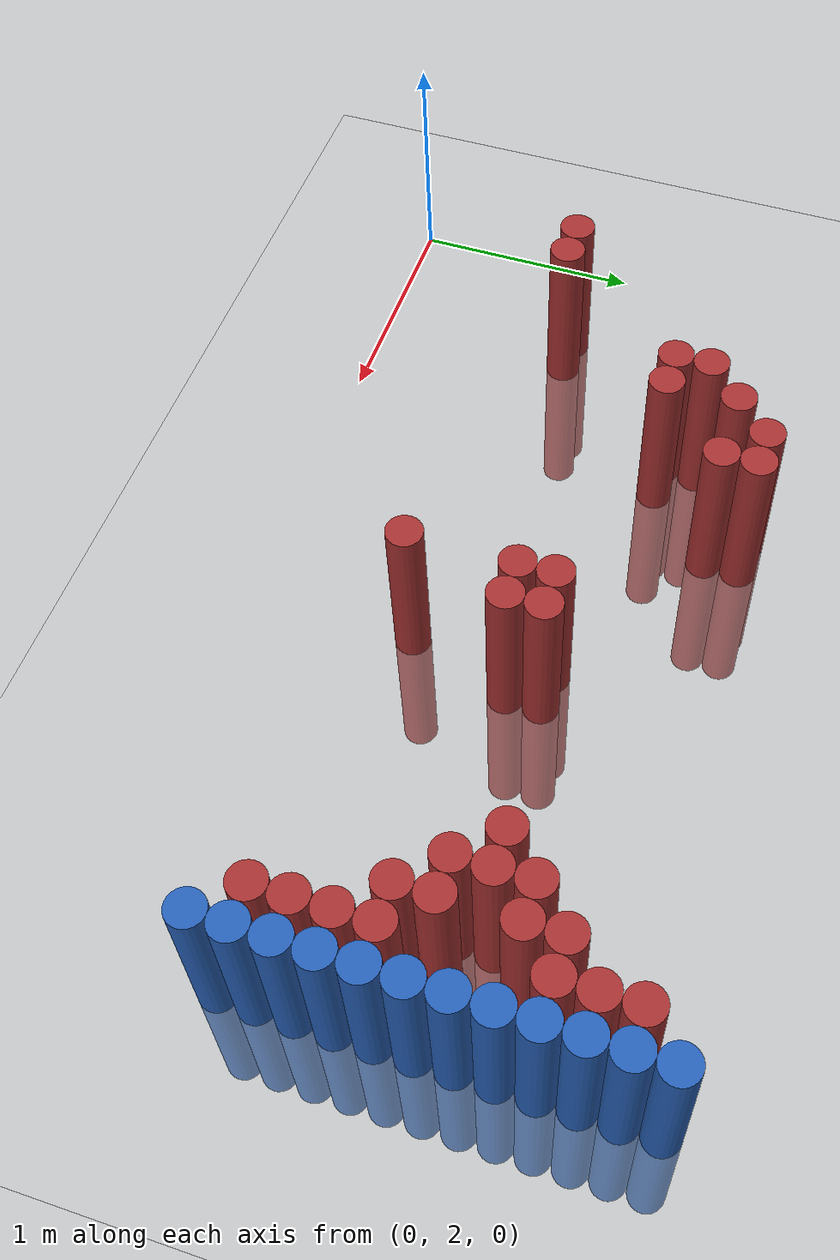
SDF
<sdf version="1.6">
 <world name="default">
  <model name="ground_plane">
   <static>1</static>
   <link name="link">
    <collision name="collision">
     <geometry><plane><normal>0 0 1</normal><size>100 100</size></plane></geometry>
     <surface><friction><ode><mu>100</mu><mu2>50</mu2></ode></friction></surface>
    </collision>
    <visual name="visual">
     <cast_shadows>0</cast_shadows>
     <geometry><plane><normal>0 0 1</normal><size>100 100</size></plane></geometry>
     <material>
      <script><uri>file://media/materials/scripts/gazebo.material</uri><name>Gazebo/Grey</name></script>
     </material>
    </visual>
   </link>
  </model>
  <model name="unit_cylinder_148">
   <static>1</static>
   <pose>3.925000 2.575000 0.000000 0.000000 0.000000 0.000000</pose>
   <link name="link">
    <inertial>
     <mass>1</mass>
     <inertia><ixx>0.145833</ixx><ixy>0</ixy><ixz>0</ixz><iyy>0.145833</iyy><iyz>0</iyz><izz>0.125</izz></inertia>
    </inertial>
    <collision name="collision">
     <geometry><cylinder><radius>0.075000</radius><length>1.5</length></cylinder></geometry>
    </collision>
    <visual name="visual">
     <geometry><cylinder><radius>0.075000</radius><length>1.5</length></cylinder></geometry>
     <material>
      <ambient>0.152000 0.379000 0.720000 1</ambient>
      <diffuse>0.152000 0.379000 0.720000 1</diffuse>
     </material>
     <material>
      <script><name>Gazebo/Grey</name><uri>file://media/materials/scripts/gazebo.material</uri></script>
     </material>
    </visual>
   </link>
  </model>
  <model name="unit_cylinder_150">
   <static>1</static>
   <pose>3.925000 2.725000 0.000000 0.000000 0.000000 0.000000</pose>
   <link name="link">
    <inertial>
     <mass>1</mass>
     <inertia><ixx>0.145833</ixx><ixy>0</ixy><ixz>0</ixz><iyy>0.145833</iyy><iyz>0</iyz><izz>0.125</izz></inertia>
    </inertial>
    <collision name="collision">
     <geometry><cylinder><radius>0.075000</radius><length>1.5</length></cylinder></geometry>
    </collision>
    <visual name="visual">
     <geometry><cylinder><radius>0.075000</radius><length>1.5</length></cylinder></geometry>
     <material>
      <ambient>0.152000 0.379000 0.720000 1</ambient>
      <diffuse>0.152000 0.379000 0.720000 1</diffuse>
     </material>
     <material>
      <script><name>Gazebo/Grey</name><uri>file://media/materials/scripts/gazebo.material</uri></script>
     </material>
    </visual>
   </link>
  </model>
  <model name="unit_cylinder_152">
   <static>1</static>
   <pose>3.925000 2.875000 0.000000 0.000000 0.000000 0.000000</pose>
   <link name="link">
    <inertial>
     <mass>1</mass>
     <inertia><ixx>0.145833</ixx><ixy>0</ixy><ixz>0</ixz><iyy>0.145833</iyy><iyz>0</iyz><izz>0.125</izz></inertia>
    </inertial>
    <collision name="collision">
     <geometry><cylinder><radius>0.075000</radius><length>1.5</length></cylinder></geometry>
    </collision>
    <visual name="visual">
     <geometry><cylinder><radius>0.075000</radius><length>1.5</length></cylinder></geometry>
     <material>
      <ambient>0.152000 0.379000 0.720000 1</ambient>
      <diffuse>0.152000 0.379000 0.720000 1</diffuse>
     </material>
     <material>
      <script><name>Gazebo/Grey</name><uri>file://media/materials/scripts/gazebo.material</uri></script>
     </material>
    </visual>
   </link>
  </model>
  <model name="unit_cylinder_154">
   <static>1</static>
   <pose>3.925000 3.025000 0.000000 0.000000 0.000000 0.000000</pose>
   <link name="link">
    <inertial>
     <mass>1</mass>
     <inertia><ixx>0.145833</ixx><ixy>0</ixy><ixz>0</ixz><iyy>0.145833</iyy><iyz>0</iyz><izz>0.125</izz></inertia>
    </inertial>
    <collision name="collision">
     <geometry><cylinder><radius>0.075000</radius><length>1.5</length></cylinder></geometry>
    </collision>
    <visual name="visual">
     <geometry><cylinder><radius>0.075000</radius><length>1.5</length></cylinder></geometry>
     <material>
      <ambient>0.152000 0.379000 0.720000 1</ambient>
      <diffuse>0.152000 0.379000 0.720000 1</diffuse>
     </material>
     <material>
      <script><name>Gazebo/Grey</name><uri>file://media/materials/scripts/gazebo.material</uri></script>
     </material>
    </visual>
   </link>
  </model>
  <model name="unit_cylinder_156">
   <static>1</static>
   <pose>3.925000 3.175000 0.000000 0.000000 0.000000 0.000000</pose>
   <link name="link">
    <inertial>
     <mass>1</mass>
     <inertia><ixx>0.145833</ixx><ixy>0</ixy><ixz>0</ixz><iyy>0.145833</iyy><iyz>0</iyz><izz>0.125</izz></inertia>
    </inertial>
    <collision name="collision">
     <geometry><cylinder><radius>0.075000</radius><length>1.5</length></cylinder></geometry>
    </collision>
    <visual name="visual">
     <geometry><cylinder><radius>0.075000</radius><length>1.5</length></cylinder></geometry>
     <material>
      <ambient>0.152000 0.379000 0.720000 1</ambient>
      <diffuse>0.152000 0.379000 0.720000 1</diffuse>
     </material>
     <material>
      <script><name>Gazebo/Grey</name><uri>file://media/materials/scripts/gazebo.material</uri></script>
     </material>
    </visual>
   </link>
  </model>
  <model name="unit_cylinder_158">
   <static>1</static>
   <pose>3.925000 3.325000 0.000000 0.000000 0.000000 0.000000</pose>
   <link name="link">
    <inertial>
     <mass>1</mass>
     <inertia><ixx>0.145833</ixx><ixy>0</ixy><ixz>0</ixz><iyy>0.145833</iyy><iyz>0</iyz><izz>0.125</izz></inertia>
    </inertial>
    <collision name="collision">
     <geometry><cylinder><radius>0.075000</radius><length>1.5</length></cylinder></geometry>
    </collision>
    <visual name="visual">
     <geometry><cylinder><radius>0.075000</radius><length>1.5</length></cylinder></geometry>
     <material>
      <ambient>0.152000 0.379000 0.720000 1</ambient>
      <diffuse>0.152000 0.379000 0.720000 1</diffuse>
     </material>
     <material>
      <script><name>Gazebo/Grey</name><uri>file://media/materials/scripts/gazebo.material</uri></script>
     </material>
    </visual>
   </link>
  </model>
  <model name="unit_cylinder_160">
   <static>1</static>
   <pose>3.925000 3.475000 0.000000 0.000000 0.000000 0.000000</pose>
   <link name="link">
    <inertial>
     <mass>1</mass>
     <inertia><ixx>0.145833</ixx><ixy>0</ixy><ixz>0</ixz><iyy>0.145833</iyy><iyz>0</iyz><izz>0.125</izz></inertia>
    </inertial>
    <collision name="collision">
     <geometry><cylinder><radius>0.075000</radius><length>1.5</length></cylinder></geometry>
    </collision>
    <visual name="visual">
     <geometry><cylinder><radius>0.075000</radius><length>1.5</length></cylinder></geometry>
     <material>
      <ambient>0.152000 0.379000 0.720000 1</ambient>
      <diffuse>0.152000 0.379000 0.720000 1</diffuse>
     </material>
     <material>
      <script><name>Gazebo/Grey</name><uri>file://media/materials/scripts/gazebo.material</uri></script>
     </material>
    </visual>
   </link>
  </model>
  <model name="unit_cylinder_162">
   <static>1</static>
   <pose>3.925000 3.625000 0.000000 0.000000 0.000000 0.000000</pose>
   <link name="link">
    <inertial>
     <mass>1</mass>
     <inertia><ixx>0.145833</ixx><ixy>0</ixy><ixz>0</ixz><iyy>0.145833</iyy><iyz>0</iyz><izz>0.125</izz></inertia>
    </inertial>
    <collision name="collision">
     <geometry><cylinder><radius>0.075000</radius><length>1.5</length></cylinder></geometry>
    </collision>
    <visual name="visual">
     <geometry><cylinder><radius>0.075000</radius><length>1.5</length></cylinder></geometry>
     <material>
      <ambient>0.152000 0.379000 0.720000 1</ambient>
      <diffuse>0.152000 0.379000 0.720000 1</diffuse>
     </material>
     <material>
      <script><name>Gazebo/Grey</name><uri>file://media/materials/scripts/gazebo.material</uri></script>
     </material>
    </visual>
   </link>
  </model>
  <model name="unit_cylinder_164">
   <static>1</static>
   <pose>3.925000 3.775000 0.000000 0.000000 0.000000 0.000000</pose>
   <link name="link">
    <inertial>
     <mass>1</mass>
     <inertia><ixx>0.145833</ixx><ixy>0</ixy><ixz>0</ixz><iyy>0.145833</iyy><iyz>0</iyz><izz>0.125</izz></inertia>
    </inertial>
    <collision name="collision">
     <geometry><cylinder><radius>0.075000</radius><length>1.5</length></cylinder></geometry>
    </collision>
    <visual name="visual">
     <geometry><cylinder><radius>0.075000</radius><length>1.5</length></cylinder></geometry>
     <material>
      <ambient>0.152000 0.379000 0.720000 1</ambient>
      <diffuse>0.152000 0.379000 0.720000 1</diffuse>
     </material>
     <material>
      <script><name>Gazebo/Grey</name><uri>file://media/materials/scripts/gazebo.material</uri></script>
     </material>
    </visual>
   </link>
  </model>
  <model name="unit_cylinder_166">
   <static>1</static>
   <pose>3.925000 3.925000 0.000000 0.000000 0.000000 0.000000</pose>
   <link name="link">
    <inertial>
     <mass>1</mass>
     <inertia><ixx>0.145833</ixx><ixy>0</ixy><ixz>0</ixz><iyy>0.145833</iyy><iyz>0</iyz><izz>0.125</izz></inertia>
    </inertial>
    <collision name="collision">
     <geometry><cylinder><radius>0.075000</radius><length>1.5</length></cylinder></geometry>
    </collision>
    <visual name="visual">
     <geometry><cylinder><radius>0.075000</radius><length>1.5</length></cylinder></geometry>
     <material>
      <ambient>0.152000 0.379000 0.720000 1</ambient>
      <diffuse>0.152000 0.379000 0.720000 1</diffuse>
     </material>
     <material>
      <script><name>Gazebo/Grey</name><uri>file://media/materials/scripts/gazebo.material</uri></script>
     </material>
    </visual>
   </link>
  </model>
  <model name="unit_cylinder_168">
   <static>1</static>
   <pose>3.925000 4.075000 0.000000 0.000000 0.000000 0.000000</pose>
   <link name="link">
    <inertial>
     <mass>1</mass>
     <inertia><ixx>0.145833</ixx><ixy>0</ixy><ixz>0</ixz><iyy>0.145833</iyy><iyz>0</iyz><izz>0.125</izz></inertia>
    </inertial>
    <collision name="collision">
     <geometry><cylinder><radius>0.075000</radius><length>1.5</length></cylinder></geometry>
    </collision>
    <visual name="visual">
     <geometry><cylinder><radius>0.075000</radius><length>1.5</length></cylinder></geometry>
     <material>
      <ambient>0.152000 0.379000 0.720000 1</ambient>
      <diffuse>0.152000 0.379000 0.720000 1</diffuse>
     </material>
     <material>
      <script><name>Gazebo/Grey</name><uri>file://media/materials/scripts/gazebo.material</uri></script>
     </material>
    </visual>
   </link>
  </model>
  <model name="unit_cylinder_170">
   <static>1</static>
   <pose>3.925000 4.225000 0.000000 0.000000 0.000000 0.000000</pose>
   <link name="link">
    <inertial>
     <mass>1</mass>
     <inertia><ixx>0.145833</ixx><ixy>0</ixy><ixz>0</ixz><iyy>0.145833</iyy><iyz>0</iyz><izz>0.125</izz></inertia>
    </inertial>
    <collision name="collision">
     <geometry><cylinder><radius>0.075000</radius><length>1.5</length></cylinder></geometry>
    </collision>
    <visual name="visual">
     <geometry><cylinder><radius>0.075000</radius><length>1.5</length></cylinder></geometry>
     <material>
      <ambient>0.152000 0.379000 0.720000 1</ambient>
      <diffuse>0.152000 0.379000 0.720000 1</diffuse>
     </material>
     <material>
      <script><name>Gazebo/Grey</name><uri>file://media/materials/scripts/gazebo.material</uri></script>
     </material>
    </visual>
   </link>
  </model>
  <model name="unit_cylinder_394">
   <static>1</static>
   <pose>0.475000 2.875000 0.000000 0.000000 0.000000 0.000000</pose>
   <link name="link">
    <inertial>
     <mass>1</mass>
     <inertia><ixx>0.145833</ixx><ixy>0</ixy><ixz>0</ixz><iyy>0.145833</iyy><iyz>0</iyz><izz>0.125</izz></inertia>
    </inertial>
    <collision name="collision">
     <geometry><cylinder><radius>0.075000</radius><length>1.5</length></cylinder></geometry>
    </collision>
    <visual name="visual">
     <geometry><cylinder><radius>0.075000</radius><length>1.5</length></cylinder></geometry>
     <material>
      <ambient>0.648000 0.192000 0.192000 1</ambient>
      <diffuse>0.648000 0.192000 0.192000 1</diffuse>
     </material>
     <material>
      <script><name>Gazebo/Grey</name><uri>file://media/materials/scripts/gazebo.material</uri></script>
     </material>
    </visual>
   </link>
  </model>
  <model name="unit_cylinder_402">
   <static>1</static>
   <pose>0.625000 2.875000 0.000000 0.000000 0.000000 0.000000</pose>
   <link name="link">
    <inertial>
     <mass>1</mass>
     <inertia><ixx>0.145833</ixx><ixy>0</ixy><ixz>0</ixz><iyy>0.145833</iyy><iyz>0</iyz><izz>0.125</izz></inertia>
    </inertial>
    <collision name="collision">
     <geometry><cylinder><radius>0.075000</radius><length>1.5</length></cylinder></geometry>
    </collision>
    <visual name="visual">
     <geometry><cylinder><radius>0.075000</radius><length>1.5</length></cylinder></geometry>
     <material>
      <ambient>0.648000 0.192000 0.192000 1</ambient>
      <diffuse>0.648000 0.192000 0.192000 1</diffuse>
     </material>
     <material>
      <script><name>Gazebo/Grey</name><uri>file://media/materials/scripts/gazebo.material</uri></script>
     </material>
    </visual>
   </link>
  </model>
  <model name="unit_cylinder_412">
   <static>1</static>
   <pose>1.075000 3.475000 0.000000 0.000000 0.000000 0.000000</pose>
   <link name="link">
    <inertial>
     <mass>1</mass>
     <inertia><ixx>0.145833</ixx><ixy>0</ixy><ixz>0</ixz><iyy>0.145833</iyy><iyz>0</iyz><izz>0.125</izz></inertia>
    </inertial>
    <collision name="collision">
     <geometry><cylinder><radius>0.075000</radius><length>1.5</length></cylinder></geometry>
    </collision>
    <visual name="visual">
     <geometry><cylinder><radius>0.075000</radius><length>1.5</length></cylinder></geometry>
     <material>
      <ambient>0.648000 0.192000 0.192000 1</ambient>
      <diffuse>0.648000 0.192000 0.192000 1</diffuse>
     </material>
     <material>
      <script><name>Gazebo/Grey</name><uri>file://media/materials/scripts/gazebo.material</uri></script>
     </material>
    </visual>
   </link>
  </model>
  <model name="unit_cylinder_413">
   <static>1</static>
   <pose>1.075000 3.625000 0.000000 0.000000 0.000000 0.000000</pose>
   <link name="link">
    <inertial>
     <mass>1</mass>
     <inertia><ixx>0.145833</ixx><ixy>0</ixy><ixz>0</ixz><iyy>0.145833</iyy><iyz>0</iyz><izz>0.125</izz></inertia>
    </inertial>
    <collision name="collision">
     <geometry><cylinder><radius>0.075000</radius><length>1.5</length></cylinder></geometry>
    </collision>
    <visual name="visual">
     <geometry><cylinder><radius>0.075000</radius><length>1.5</length></cylinder></geometry>
     <material>
      <ambient>0.648000 0.192000 0.192000 1</ambient>
      <diffuse>0.648000 0.192000 0.192000 1</diffuse>
     </material>
     <material>
      <script><name>Gazebo/Grey</name><uri>file://media/materials/scripts/gazebo.material</uri></script>
     </material>
    </visual>
   </link>
  </model>
  <model name="unit_cylinder_417">
   <static>1</static>
   <pose>1.225000 3.475000 0.000000 0.000000 0.000000 0.000000</pose>
   <link name="link">
    <inertial>
     <mass>1</mass>
     <inertia><ixx>0.145833</ixx><ixy>0</ixy><ixz>0</ixz><iyy>0.145833</iyy><iyz>0</iyz><izz>0.125</izz></inertia>
    </inertial>
    <collision name="collision">
     <geometry><cylinder><radius>0.075000</radius><length>1.5</length></cylinder></geometry>
    </collision>
    <visual name="visual">
     <geometry><cylinder><radius>0.075000</radius><length>1.5</length></cylinder></geometry>
     <material>
      <ambient>0.648000 0.192000 0.192000 1</ambient>
      <diffuse>0.648000 0.192000 0.192000 1</diffuse>
     </material>
     <material>
      <script><name>Gazebo/Grey</name><uri>file://media/materials/scripts/gazebo.material</uri></script>
     </material>
    </visual>
   </link>
  </model>
  <model name="unit_cylinder_418">
   <static>1</static>
   <pose>1.225000 3.775000 0.000000 0.000000 0.000000 0.000000</pose>
   <link name="link">
    <inertial>
     <mass>1</mass>
     <inertia><ixx>0.145833</ixx><ixy>0</ixy><ixz>0</ixz><iyy>0.145833</iyy><iyz>0</iyz><izz>0.125</izz></inertia>
    </inertial>
    <collision name="collision">
     <geometry><cylinder><radius>0.075000</radius><length>1.5</length></cylinder></geometry>
    </collision>
    <visual name="visual">
     <geometry><cylinder><radius>0.075000</radius><length>1.5</length></cylinder></geometry>
     <material>
      <ambient>0.648000 0.192000 0.192000 1</ambient>
      <diffuse>0.648000 0.192000 0.192000 1</diffuse>
     </material>
     <material>
      <script><name>Gazebo/Grey</name><uri>file://media/materials/scripts/gazebo.material</uri></script>
     </material>
    </visual>
   </link>
  </model>
  <model name="unit_cylinder_423">
   <static>1</static>
   <pose>1.375000 3.925000 0.000000 0.000000 0.000000 0.000000</pose>
   <link name="link">
    <inertial>
     <mass>1</mass>
     <inertia><ixx>0.145833</ixx><ixy>0</ixy><ixz>0</ixz><iyy>0.145833</iyy><iyz>0</iyz><izz>0.125</izz></inertia>
    </inertial>
    <collision name="collision">
     <geometry><cylinder><radius>0.075000</radius><length>1.5</length></cylinder></geometry>
    </collision>
    <visual name="visual">
     <geometry><cylinder><radius>0.075000</radius><length>1.5</length></cylinder></geometry>
     <material>
      <ambient>0.648000 0.192000 0.192000 1</ambient>
      <diffuse>0.648000 0.192000 0.192000 1</diffuse>
     </material>
     <material>
      <script><name>Gazebo/Grey</name><uri>file://media/materials/scripts/gazebo.material</uri></script>
     </material>
    </visual>
   </link>
  </model>
  <model name="unit_cylinder_425">
   <static>1</static>
   <pose>1.525000 3.775000 0.000000 0.000000 0.000000 0.000000</pose>
   <link name="link">
    <inertial>
     <mass>1</mass>
     <inertia><ixx>0.145833</ixx><ixy>0</ixy><ixz>0</ixz><iyy>0.145833</iyy><iyz>0</iyz><izz>0.125</izz></inertia>
    </inertial>
    <collision name="collision">
     <geometry><cylinder><radius>0.075000</radius><length>1.5</length></cylinder></geometry>
    </collision>
    <visual name="visual">
     <geometry><cylinder><radius>0.075000</radius><length>1.5</length></cylinder></geometry>
     <material>
      <ambient>0.648000 0.192000 0.192000 1</ambient>
      <diffuse>0.648000 0.192000 0.192000 1</diffuse>
     </material>
     <material>
      <script><name>Gazebo/Grey</name><uri>file://media/materials/scripts/gazebo.material</uri></script>
     </material>
    </visual>
   </link>
  </model>
  <model name="unit_cylinder_426">
   <static>1</static>
   <pose>1.525000 3.925000 0.000000 0.000000 0.000000 0.000000</pose>
   <link name="link">
    <inertial>
     <mass>1</mass>
     <inertia><ixx>0.145833</ixx><ixy>0</ixy><ixz>0</ixz><iyy>0.145833</iyy><iyz>0</iyz><izz>0.125</izz></inertia>
    </inertial>
    <collision name="collision">
     <geometry><cylinder><radius>0.075000</radius><length>1.5</length></cylinder></geometry>
    </collision>
    <visual name="visual">
     <geometry><cylinder><radius>0.075000</radius><length>1.5</length></cylinder></geometry>
     <material>
      <ambient>0.648000 0.192000 0.192000 1</ambient>
      <diffuse>0.648000 0.192000 0.192000 1</diffuse>
     </material>
     <material>
      <script><name>Gazebo/Grey</name><uri>file://media/materials/scripts/gazebo.material</uri></script>
     </material>
    </visual>
   </link>
  </model>
  <model name="unit_cylinder_446">
   <static>1</static>
   <pose>2.275000 2.725000 0.000000 0.000000 0.000000 0.000000</pose>
   <link name="link">
    <inertial>
     <mass>1</mass>
     <inertia><ixx>0.145833</ixx><ixy>0</ixy><ixz>0</ixz><iyy>0.145833</iyy><iyz>0</iyz><izz>0.125</izz></inertia>
    </inertial>
    <collision name="collision">
     <geometry><cylinder><radius>0.075000</radius><length>1.5</length></cylinder></geometry>
    </collision>
    <visual name="visual">
     <geometry><cylinder><radius>0.075000</radius><length>1.5</length></cylinder></geometry>
     <material>
      <ambient>0.648000 0.192000 0.192000 1</ambient>
      <diffuse>0.648000 0.192000 0.192000 1</diffuse>
     </material>
     <material>
      <script><name>Gazebo/Grey</name><uri>file://media/materials/scripts/gazebo.material</uri></script>
     </material>
    </visual>
   </link>
  </model>
  <model name="unit_cylinder_447">
   <static>1</static>
   <pose>2.275000 3.175000 0.000000 0.000000 0.000000 0.000000</pose>
   <link name="link">
    <inertial>
     <mass>1</mass>
     <inertia><ixx>0.145833</ixx><ixy>0</ixy><ixz>0</ixz><iyy>0.145833</iyy><iyz>0</iyz><izz>0.125</izz></inertia>
    </inertial>
    <collision name="collision">
     <geometry><cylinder><radius>0.075000</radius><length>1.5</length></cylinder></geometry>
    </collision>
    <visual name="visual">
     <geometry><cylinder><radius>0.075000</radius><length>1.5</length></cylinder></geometry>
     <material>
      <ambient>0.648000 0.192000 0.192000 1</ambient>
      <diffuse>0.648000 0.192000 0.192000 1</diffuse>
     </material>
     <material>
      <script><name>Gazebo/Grey</name><uri>file://media/materials/scripts/gazebo.material</uri></script>
     </material>
    </visual>
   </link>
  </model>
  <model name="unit_cylinder_448">
   <static>1</static>
   <pose>2.275000 3.325000 0.000000 0.000000 0.000000 0.000000</pose>
   <link name="link">
    <inertial>
     <mass>1</mass>
     <inertia><ixx>0.145833</ixx><ixy>0</ixy><ixz>0</ixz><iyy>0.145833</iyy><iyz>0</iyz><izz>0.125</izz></inertia>
    </inertial>
    <collision name="collision">
     <geometry><cylinder><radius>0.075000</radius><length>1.5</length></cylinder></geometry>
    </collision>
    <visual name="visual">
     <geometry><cylinder><radius>0.075000</radius><length>1.5</length></cylinder></geometry>
     <material>
      <ambient>0.648000 0.192000 0.192000 1</ambient>
      <diffuse>0.648000 0.192000 0.192000 1</diffuse>
     </material>
     <material>
      <script><name>Gazebo/Grey</name><uri>file://media/materials/scripts/gazebo.material</uri></script>
     </material>
    </visual>
   </link>
  </model>
  <model name="unit_cylinder_455">
   <static>1</static>
   <pose>2.425000 3.175000 0.000000 0.000000 0.000000 0.000000</pose>
   <link name="link">
    <inertial>
     <mass>1</mass>
     <inertia><ixx>0.145833</ixx><ixy>0</ixy><ixz>0</ixz><iyy>0.145833</iyy><iyz>0</iyz><izz>0.125</izz></inertia>
    </inertial>
    <collision name="collision">
     <geometry><cylinder><radius>0.075000</radius><length>1.5</length></cylinder></geometry>
    </collision>
    <visual name="visual">
     <geometry><cylinder><radius>0.075000</radius><length>1.5</length></cylinder></geometry>
     <material>
      <ambient>0.648000 0.192000 0.192000 1</ambient>
      <diffuse>0.648000 0.192000 0.192000 1</diffuse>
     </material>
     <material>
      <script><name>Gazebo/Grey</name><uri>file://media/materials/scripts/gazebo.material</uri></script>
     </material>
    </visual>
   </link>
  </model>
  <model name="unit_cylinder_456">
   <static>1</static>
   <pose>2.425000 3.325000 0.000000 0.000000 0.000000 0.000000</pose>
   <link name="link">
    <inertial>
     <mass>1</mass>
     <inertia><ixx>0.145833</ixx><ixy>0</ixy><ixz>0</ixz><iyy>0.145833</iyy><iyz>0</iyz><izz>0.125</izz></inertia>
    </inertial>
    <collision name="collision">
     <geometry><cylinder><radius>0.075000</radius><length>1.5</length></cylinder></geometry>
    </collision>
    <visual name="visual">
     <geometry><cylinder><radius>0.075000</radius><length>1.5</length></cylinder></geometry>
     <material>
      <ambient>0.648000 0.192000 0.192000 1</ambient>
      <diffuse>0.648000 0.192000 0.192000 1</diffuse>
     </material>
     <material>
      <script><name>Gazebo/Grey</name><uri>file://media/materials/scripts/gazebo.material</uri></script>
     </material>
    </visual>
   </link>
  </model>
  <model name="unit_cylinder_497">
   <static>1</static>
   <pose>3.325000 3.475000 0.000000 0.000000 0.000000 0.000000</pose>
   <link name="link">
    <inertial>
     <mass>1</mass>
     <inertia><ixx>0.145833</ixx><ixy>0</ixy><ixz>0</ixz><iyy>0.145833</iyy><iyz>0</iyz><izz>0.125</izz></inertia>
    </inertial>
    <collision name="collision">
     <geometry><cylinder><radius>0.075000</radius><length>1.5</length></cylinder></geometry>
    </collision>
    <visual name="visual">
     <geometry><cylinder><radius>0.075000</radius><length>1.5</length></cylinder></geometry>
     <material>
      <ambient>0.648000 0.192000 0.192000 1</ambient>
      <diffuse>0.648000 0.192000 0.192000 1</diffuse>
     </material>
     <material>
      <script><name>Gazebo/Grey</name><uri>file://media/materials/scripts/gazebo.material</uri></script>
     </material>
    </visual>
   </link>
  </model>
  <model name="unit_cylinder_503">
   <static>1</static>
   <pose>3.475000 3.325000 0.000000 0.000000 0.000000 0.000000</pose>
   <link name="link">
    <inertial>
     <mass>1</mass>
     <inertia><ixx>0.145833</ixx><ixy>0</ixy><ixz>0</ixz><iyy>0.145833</iyy><iyz>0</iyz><izz>0.125</izz></inertia>
    </inertial>
    <collision name="collision">
     <geometry><cylinder><radius>0.075000</radius><length>1.5</length></cylinder></geometry>
    </collision>
    <visual name="visual">
     <geometry><cylinder><radius>0.075000</radius><length>1.5</length></cylinder></geometry>
     <material>
      <ambient>0.648000 0.192000 0.192000 1</ambient>
      <diffuse>0.648000 0.192000 0.192000 1</diffuse>
     </material>
     <material>
      <script><name>Gazebo/Grey</name><uri>file://media/materials/scripts/gazebo.material</uri></script>
     </material>
    </visual>
   </link>
  </model>
  <model name="unit_cylinder_504">
   <static>1</static>
   <pose>3.475000 3.475000 0.000000 0.000000 0.000000 0.000000</pose>
   <link name="link">
    <inertial>
     <mass>1</mass>
     <inertia><ixx>0.145833</ixx><ixy>0</ixy><ixz>0</ixz><iyy>0.145833</iyy><iyz>0</iyz><izz>0.125</izz></inertia>
    </inertial>
    <collision name="collision">
     <geometry><cylinder><radius>0.075000</radius><length>1.5</length></cylinder></geometry>
    </collision>
    <visual name="visual">
     <geometry><cylinder><radius>0.075000</radius><length>1.5</length></cylinder></geometry>
     <material>
      <ambient>0.648000 0.192000 0.192000 1</ambient>
      <diffuse>0.648000 0.192000 0.192000 1</diffuse>
     </material>
     <material>
      <script><name>Gazebo/Grey</name><uri>file://media/materials/scripts/gazebo.material</uri></script>
     </material>
    </visual>
   </link>
  </model>
  <model name="unit_cylinder_505">
   <static>1</static>
   <pose>3.475000 3.625000 0.000000 0.000000 0.000000 0.000000</pose>
   <link name="link">
    <inertial>
     <mass>1</mass>
     <inertia><ixx>0.145833</ixx><ixy>0</ixy><ixz>0</ixz><iyy>0.145833</iyy><iyz>0</iyz><izz>0.125</izz></inertia>
    </inertial>
    <collision name="collision">
     <geometry><cylinder><radius>0.075000</radius><length>1.5</length></cylinder></geometry>
    </collision>
    <visual name="visual">
     <geometry><cylinder><radius>0.075000</radius><length>1.5</length></cylinder></geometry>
     <material>
      <ambient>0.648000 0.192000 0.192000 1</ambient>
      <diffuse>0.648000 0.192000 0.192000 1</diffuse>
     </material>
     <material>
      <script><name>Gazebo/Grey</name><uri>file://media/materials/scripts/gazebo.material</uri></script>
     </material>
    </visual>
   </link>
  </model>
  <model name="unit_cylinder_510">
   <static>1</static>
   <pose>3.625000 3.175000 0.000000 0.000000 0.000000 0.000000</pose>
   <link name="link">
    <inertial>
     <mass>1</mass>
     <inertia><ixx>0.145833</ixx><ixy>0</ixy><ixz>0</ixz><iyy>0.145833</iyy><iyz>0</iyz><izz>0.125</izz></inertia>
    </inertial>
    <collision name="collision">
     <geometry><cylinder><radius>0.075000</radius><length>1.5</length></cylinder></geometry>
    </collision>
    <visual name="visual">
     <geometry><cylinder><radius>0.075000</radius><length>1.5</length></cylinder></geometry>
     <material>
      <ambient>0.648000 0.192000 0.192000 1</ambient>
      <diffuse>0.648000 0.192000 0.192000 1</diffuse>
     </material>
     <material>
      <script><name>Gazebo/Grey</name><uri>file://media/materials/scripts/gazebo.material</uri></script>
     </material>
    </visual>
   </link>
  </model>
  <model name="unit_cylinder_511">
   <static>1</static>
   <pose>3.625000 3.325000 0.000000 0.000000 0.000000 0.000000</pose>
   <link name="link">
    <inertial>
     <mass>1</mass>
     <inertia><ixx>0.145833</ixx><ixy>0</ixy><ixz>0</ixz><iyy>0.145833</iyy><iyz>0</iyz><izz>0.125</izz></inertia>
    </inertial>
    <collision name="collision">
     <geometry><cylinder><radius>0.075000</radius><length>1.5</length></cylinder></geometry>
    </collision>
    <visual name="visual">
     <geometry><cylinder><radius>0.075000</radius><length>1.5</length></cylinder></geometry>
     <material>
      <ambient>0.648000 0.192000 0.192000 1</ambient>
      <diffuse>0.648000 0.192000 0.192000 1</diffuse>
     </material>
     <material>
      <script><name>Gazebo/Grey</name><uri>file://media/materials/scripts/gazebo.material</uri></script>
     </material>
    </visual>
   </link>
  </model>
  <model name="unit_cylinder_512">
   <static>1</static>
   <pose>3.625000 3.625000 0.000000 0.000000 0.000000 0.000000</pose>
   <link name="link">
    <inertial>
     <mass>1</mass>
     <inertia><ixx>0.145833</ixx><ixy>0</ixy><ixz>0</ixz><iyy>0.145833</iyy><iyz>0</iyz><izz>0.125</izz></inertia>
    </inertial>
    <collision name="collision">
     <geometry><cylinder><radius>0.075000</radius><length>1.5</length></cylinder></geometry>
    </collision>
    <visual name="visual">
     <geometry><cylinder><radius>0.075000</radius><length>1.5</length></cylinder></geometry>
     <material>
      <ambient>0.648000 0.192000 0.192000 1</ambient>
      <diffuse>0.648000 0.192000 0.192000 1</diffuse>
     </material>
     <material>
      <script><name>Gazebo/Grey</name><uri>file://media/materials/scripts/gazebo.material</uri></script>
     </material>
    </visual>
   </link>
  </model>
  <model name="unit_cylinder_513">
   <static>1</static>
   <pose>3.625000 3.775000 0.000000 0.000000 0.000000 0.000000</pose>
   <link name="link">
    <inertial>
     <mass>1</mass>
     <inertia><ixx>0.145833</ixx><ixy>0</ixy><ixz>0</ixz><iyy>0.145833</iyy><iyz>0</iyz><izz>0.125</izz></inertia>
    </inertial>
    <collision name="collision">
     <geometry><cylinder><radius>0.075000</radius><length>1.5</length></cylinder></geometry>
    </collision>
    <visual name="visual">
     <geometry><cylinder><radius>0.075000</radius><length>1.5</length></cylinder></geometry>
     <material>
      <ambient>0.648000 0.192000 0.192000 1</ambient>
      <diffuse>0.648000 0.192000 0.192000 1</diffuse>
     </material>
     <material>
      <script><name>Gazebo/Grey</name><uri>file://media/materials/scripts/gazebo.material</uri></script>
     </material>
    </visual>
   </link>
  </model>
  <model name="unit_cylinder_528">
   <static>1</static>
   <pose>3.775000 2.725000 0.000000 0.000000 0.000000 0.000000</pose>
   <link name="link">
    <inertial>
     <mass>1</mass>
     <inertia><ixx>0.145833</ixx><ixy>0</ixy><ixz>0</ixz><iyy>0.145833</iyy><iyz>0</iyz><izz>0.125</izz></inertia>
    </inertial>
    <collision name="collision">
     <geometry><cylinder><radius>0.075000</radius><length>1.5</length></cylinder></geometry>
    </collision>
    <visual name="visual">
     <geometry><cylinder><radius>0.075000</radius><length>1.5</length></cylinder></geometry>
     <material>
      <ambient>0.648000 0.192000 0.192000 1</ambient>
      <diffuse>0.648000 0.192000 0.192000 1</diffuse>
     </material>
     <material>
      <script><name>Gazebo/Grey</name><uri>file://media/materials/scripts/gazebo.material</uri></script>
     </material>
    </visual>
   </link>
  </model>
  <model name="unit_cylinder_529">
   <static>1</static>
   <pose>3.775000 2.875000 0.000000 0.000000 0.000000 0.000000</pose>
   <link name="link">
    <inertial>
     <mass>1</mass>
     <inertia><ixx>0.145833</ixx><ixy>0</ixy><ixz>0</ixz><iyy>0.145833</iyy><iyz>0</iyz><izz>0.125</izz></inertia>
    </inertial>
    <collision name="collision">
     <geometry><cylinder><radius>0.075000</radius><length>1.5</length></cylinder></geometry>
    </collision>
    <visual name="visual">
     <geometry><cylinder><radius>0.075000</radius><length>1.5</length></cylinder></geometry>
     <material>
      <ambient>0.648000 0.192000 0.192000 1</ambient>
      <diffuse>0.648000 0.192000 0.192000 1</diffuse>
     </material>
     <material>
      <script><name>Gazebo/Grey</name><uri>file://media/materials/scripts/gazebo.material</uri></script>
     </material>
    </visual>
   </link>
  </model>
  <model name="unit_cylinder_530">
   <static>1</static>
   <pose>3.775000 3.025000 0.000000 0.000000 0.000000 0.000000</pose>
   <link name="link">
    <inertial>
     <mass>1</mass>
     <inertia><ixx>0.145833</ixx><ixy>0</ixy><ixz>0</ixz><iyy>0.145833</iyy><iyz>0</iyz><izz>0.125</izz></inertia>
    </inertial>
    <collision name="collision">
     <geometry><cylinder><radius>0.075000</radius><length>1.5</length></cylinder></geometry>
    </collision>
    <visual name="visual">
     <geometry><cylinder><radius>0.075000</radius><length>1.5</length></cylinder></geometry>
     <material>
      <ambient>0.648000 0.192000 0.192000 1</ambient>
      <diffuse>0.648000 0.192000 0.192000 1</diffuse>
     </material>
     <material>
      <script><name>Gazebo/Grey</name><uri>file://media/materials/scripts/gazebo.material</uri></script>
     </material>
    </visual>
   </link>
  </model>
  <model name="unit_cylinder_531">
   <static>1</static>
   <pose>3.775000 3.175000 0.000000 0.000000 0.000000 0.000000</pose>
   <link name="link">
    <inertial>
     <mass>1</mass>
     <inertia><ixx>0.145833</ixx><ixy>0</ixy><ixz>0</ixz><iyy>0.145833</iyy><iyz>0</iyz><izz>0.125</izz></inertia>
    </inertial>
    <collision name="collision">
     <geometry><cylinder><radius>0.075000</radius><length>1.5</length></cylinder></geometry>
    </collision>
    <visual name="visual">
     <geometry><cylinder><radius>0.075000</radius><length>1.5</length></cylinder></geometry>
     <material>
      <ambient>0.648000 0.192000 0.192000 1</ambient>
      <diffuse>0.648000 0.192000 0.192000 1</diffuse>
     </material>
     <material>
      <script><name>Gazebo/Grey</name><uri>file://media/materials/scripts/gazebo.material</uri></script>
     </material>
    </visual>
   </link>
  </model>
  <model name="unit_cylinder_532">
   <static>1</static>
   <pose>3.775000 3.775000 0.000000 0.000000 0.000000 0.000000</pose>
   <link name="link">
    <inertial>
     <mass>1</mass>
     <inertia><ixx>0.145833</ixx><ixy>0</ixy><ixz>0</ixz><iyy>0.145833</iyy><iyz>0</iyz><izz>0.125</izz></inertia>
    </inertial>
    <collision name="collision">
     <geometry><cylinder><radius>0.075000</radius><length>1.5</length></cylinder></geometry>
    </collision>
    <visual name="visual">
     <geometry><cylinder><radius>0.075000</radius><length>1.5</length></cylinder></geometry>
     <material>
      <ambient>0.648000 0.192000 0.192000 1</ambient>
      <diffuse>0.648000 0.192000 0.192000 1</diffuse>
     </material>
     <material>
      <script><name>Gazebo/Grey</name><uri>file://media/materials/scripts/gazebo.material</uri></script>
     </material>
    </visual>
   </link>
  </model>
  <model name="unit_cylinder_533">
   <static>1</static>
   <pose>3.775000 3.925000 0.000000 0.000000 0.000000 0.000000</pose>
   <link name="link">
    <inertial>
     <mass>1</mass>
     <inertia><ixx>0.145833</ixx><ixy>0</ixy><ixz>0</ixz><iyy>0.145833</iyy><iyz>0</iyz><izz>0.125</izz></inertia>
    </inertial>
    <collision name="collision">
     <geometry><cylinder><radius>0.075000</radius><length>1.5</length></cylinder></geometry>
    </collision>
    <visual name="visual">
     <geometry><cylinder><radius>0.075000</radius><length>1.5</length></cylinder></geometry>
     <material>
      <ambient>0.648000 0.192000 0.192000 1</ambient>
      <diffuse>0.648000 0.192000 0.192000 1</diffuse>
     </material>
     <material>
      <script><name>Gazebo/Grey</name><uri>file://media/materials/scripts/gazebo.material</uri></script>
     </material>
    </visual>
   </link>
  </model>
  <model name="unit_cylinder_534">
   <static>1</static>
   <pose>3.775000 4.075000 0.000000 0.000000 0.000000 0.000000</pose>
   <link name="link">
    <inertial>
     <mass>1</mass>
     <inertia><ixx>0.145833</ixx><ixy>0</ixy><ixz>0</ixz><iyy>0.145833</iyy><iyz>0</iyz><izz>0.125</izz></inertia>
    </inertial>
    <collision name="collision">
     <geometry><cylinder><radius>0.075000</radius><length>1.5</length></cylinder></geometry>
    </collision>
    <visual name="visual">
     <geometry><cylinder><radius>0.075000</radius><length>1.5</length></cylinder></geometry>
     <material>
      <ambient>0.648000 0.192000 0.192000 1</ambient>
      <diffuse>0.648000 0.192000 0.192000 1</diffuse>
     </material>
     <material>
      <script><name>Gazebo/Grey</name><uri>file://media/materials/scripts/gazebo.material</uri></script>
     </material>
    </visual>
   </link>
  </model>
  <model name="unit_cylinder_569">
   <static>1</static>
   <pose>3.925000 2.575000 0.000000 0.000000 0.000000 0.000000</pose>
   <link name="link">
    <inertial>
     <mass>1</mass>
     <inertia><ixx>0.145833</ixx><ixy>0</ixy><ixz>0</ixz><iyy>0.145833</iyy><iyz>0</iyz><izz>0.125</izz></inertia>
    </inertial>
    <collision name="collision">
     <geometry><cylinder><radius>0.075000</radius><length>1.5</length></cylinder></geometry>
    </collision>
    <visual name="visual">
     <geometry><cylinder><radius>0.075000</radius><length>1.5</length></cylinder></geometry>
     <material>
      <ambient>0.152000 0.379000 0.720000 1</ambient>
      <diffuse>0.152000 0.379000 0.720000 1</diffuse>
     </material>
     <material>
      <script><name>Gazebo/Grey</name><uri>file://media/materials/scripts/gazebo.material</uri></script>
     </material>
    </visual>
   </link>
  </model>
  <model name="unit_cylinder_570">
   <static>1</static>
   <pose>3.925000 2.725000 0.000000 0.000000 0.000000 0.000000</pose>
   <link name="link">
    <inertial>
     <mass>1</mass>
     <inertia><ixx>0.145833</ixx><ixy>0</ixy><ixz>0</ixz><iyy>0.145833</iyy><iyz>0</iyz><izz>0.125</izz></inertia>
    </inertial>
    <collision name="collision">
     <geometry><cylinder><radius>0.075000</radius><length>1.5</length></cylinder></geometry>
    </collision>
    <visual name="visual">
     <geometry><cylinder><radius>0.075000</radius><length>1.5</length></cylinder></geometry>
     <material>
      <ambient>0.152000 0.379000 0.720000 1</ambient>
      <diffuse>0.152000 0.379000 0.720000 1</diffuse>
     </material>
     <material>
      <script><name>Gazebo/Grey</name><uri>file://media/materials/scripts/gazebo.material</uri></script>
     </material>
    </visual>
   </link>
  </model>
  <model name="unit_cylinder_571">
   <static>1</static>
   <pose>3.925000 2.875000 0.000000 0.000000 0.000000 0.000000</pose>
   <link name="link">
    <inertial>
     <mass>1</mass>
     <inertia><ixx>0.145833</ixx><ixy>0</ixy><ixz>0</ixz><iyy>0.145833</iyy><iyz>0</iyz><izz>0.125</izz></inertia>
    </inertial>
    <collision name="collision">
     <geometry><cylinder><radius>0.075000</radius><length>1.5</length></cylinder></geometry>
    </collision>
    <visual name="visual">
     <geometry><cylinder><radius>0.075000</radius><length>1.5</length></cylinder></geometry>
     <material>
      <ambient>0.152000 0.379000 0.720000 1</ambient>
      <diffuse>0.152000 0.379000 0.720000 1</diffuse>
     </material>
     <material>
      <script><name>Gazebo/Grey</name><uri>file://media/materials/scripts/gazebo.material</uri></script>
     </material>
    </visual>
   </link>
  </model>
  <model name="unit_cylinder_572">
   <static>1</static>
   <pose>3.925000 3.025000 0.000000 0.000000 0.000000 0.000000</pose>
   <link name="link">
    <inertial>
     <mass>1</mass>
     <inertia><ixx>0.145833</ixx><ixy>0</ixy><ixz>0</ixz><iyy>0.145833</iyy><iyz>0</iyz><izz>0.125</izz></inertia>
    </inertial>
    <collision name="collision">
     <geometry><cylinder><radius>0.075000</radius><length>1.5</length></cylinder></geometry>
    </collision>
    <visual name="visual">
     <geometry><cylinder><radius>0.075000</radius><length>1.5</length></cylinder></geometry>
     <material>
      <ambient>0.152000 0.379000 0.720000 1</ambient>
      <diffuse>0.152000 0.379000 0.720000 1</diffuse>
     </material>
     <material>
      <script><name>Gazebo/Grey</name><uri>file://media/materials/scripts/gazebo.material</uri></script>
     </material>
    </visual>
   </link>
  </model>
  <model name="unit_cylinder_573">
   <static>1</static>
   <pose>3.925000 3.175000 0.000000 0.000000 0.000000 0.000000</pose>
   <link name="link">
    <inertial>
     <mass>1</mass>
     <inertia><ixx>0.145833</ixx><ixy>0</ixy><ixz>0</ixz><iyy>0.145833</iyy><iyz>0</iyz><izz>0.125</izz></inertia>
    </inertial>
    <collision name="collision">
     <geometry><cylinder><radius>0.075000</radius><length>1.5</length></cylinder></geometry>
    </collision>
    <visual name="visual">
     <geometry><cylinder><radius>0.075000</radius><length>1.5</length></cylinder></geometry>
     <material>
      <ambient>0.152000 0.379000 0.720000 1</ambient>
      <diffuse>0.152000 0.379000 0.720000 1</diffuse>
     </material>
     <material>
      <script><name>Gazebo/Grey</name><uri>file://media/materials/scripts/gazebo.material</uri></script>
     </material>
    </visual>
   </link>
  </model>
  <model name="unit_cylinder_574">
   <static>1</static>
   <pose>3.925000 3.325000 0.000000 0.000000 0.000000 0.000000</pose>
   <link name="link">
    <inertial>
     <mass>1</mass>
     <inertia><ixx>0.145833</ixx><ixy>0</ixy><ixz>0</ixz><iyy>0.145833</iyy><iyz>0</iyz><izz>0.125</izz></inertia>
    </inertial>
    <collision name="collision">
     <geometry><cylinder><radius>0.075000</radius><length>1.5</length></cylinder></geometry>
    </collision>
    <visual name="visual">
     <geometry><cylinder><radius>0.075000</radius><length>1.5</length></cylinder></geometry>
     <material>
      <ambient>0.152000 0.379000 0.720000 1</ambient>
      <diffuse>0.152000 0.379000 0.720000 1</diffuse>
     </material>
     <material>
      <script><name>Gazebo/Grey</name><uri>file://media/materials/scripts/gazebo.material</uri></script>
     </material>
    </visual>
   </link>
  </model>
  <model name="unit_cylinder_575">
   <static>1</static>
   <pose>3.925000 3.475000 0.000000 0.000000 0.000000 0.000000</pose>
   <link name="link">
    <inertial>
     <mass>1</mass>
     <inertia><ixx>0.145833</ixx><ixy>0</ixy><ixz>0</ixz><iyy>0.145833</iyy><iyz>0</iyz><izz>0.125</izz></inertia>
    </inertial>
    <collision name="collision">
     <geometry><cylinder><radius>0.075000</radius><length>1.5</length></cylinder></geometry>
    </collision>
    <visual name="visual">
     <geometry><cylinder><radius>0.075000</radius><length>1.5</length></cylinder></geometry>
     <material>
      <ambient>0.152000 0.379000 0.720000 1</ambient>
      <diffuse>0.152000 0.379000 0.720000 1</diffuse>
     </material>
     <material>
      <script><name>Gazebo/Grey</name><uri>file://media/materials/scripts/gazebo.material</uri></script>
     </material>
    </visual>
   </link>
  </model>
  <model name="unit_cylinder_576">
   <static>1</static>
   <pose>3.925000 3.625000 0.000000 0.000000 0.000000 0.000000</pose>
   <link name="link">
    <inertial>
     <mass>1</mass>
     <inertia><ixx>0.145833</ixx><ixy>0</ixy><ixz>0</ixz><iyy>0.145833</iyy><iyz>0</iyz><izz>0.125</izz></inertia>
    </inertial>
    <collision name="collision">
     <geometry><cylinder><radius>0.075000</radius><length>1.5</length></cylinder></geometry>
    </collision>
    <visual name="visual">
     <geometry><cylinder><radius>0.075000</radius><length>1.5</length></cylinder></geometry>
     <material>
      <ambient>0.152000 0.379000 0.720000 1</ambient>
      <diffuse>0.152000 0.379000 0.720000 1</diffuse>
     </material>
     <material>
      <script><name>Gazebo/Grey</name><uri>file://media/materials/scripts/gazebo.material</uri></script>
     </material>
    </visual>
   </link>
  </model>
  <model name="unit_cylinder_577">
   <static>1</static>
   <pose>3.925000 3.775000 0.000000 0.000000 0.000000 0.000000</pose>
   <link name="link">
    <inertial>
     <mass>1</mass>
     <inertia><ixx>0.145833</ixx><ixy>0</ixy><ixz>0</ixz><iyy>0.145833</iyy><iyz>0</iyz><izz>0.125</izz></inertia>
    </inertial>
    <collision name="collision">
     <geometry><cylinder><radius>0.075000</radius><length>1.5</length></cylinder></geometry>
    </collision>
    <visual name="visual">
     <geometry><cylinder><radius>0.075000</radius><length>1.5</length></cylinder></geometry>
     <material>
      <ambient>0.152000 0.379000 0.720000 1</ambient>
      <diffuse>0.152000 0.379000 0.720000 1</diffuse>
     </material>
     <material>
      <script><name>Gazebo/Grey</name><uri>file://media/materials/scripts/gazebo.material</uri></script>
     </material>
    </visual>
   </link>
  </model>
  <model name="unit_cylinder_578">
   <static>1</static>
   <pose>3.925000 3.925000 0.000000 0.000000 0.000000 0.000000</pose>
   <link name="link">
    <inertial>
     <mass>1</mass>
     <inertia><ixx>0.145833</ixx><ixy>0</ixy><ixz>0</ixz><iyy>0.145833</iyy><iyz>0</iyz><izz>0.125</izz></inertia>
    </inertial>
    <collision name="collision">
     <geometry><cylinder><radius>0.075000</radius><length>1.5</length></cylinder></geometry>
    </collision>
    <visual name="visual">
     <geometry><cylinder><radius>0.075000</radius><length>1.5</length></cylinder></geometry>
     <material>
      <ambient>0.152000 0.379000 0.720000 1</ambient>
      <diffuse>0.152000 0.379000 0.720000 1</diffuse>
     </material>
     <material>
      <script><name>Gazebo/Grey</name><uri>file://media/materials/scripts/gazebo.material</uri></script>
     </material>
    </visual>
   </link>
  </model>
  <model name="unit_cylinder_579">
   <static>1</static>
   <pose>3.925000 4.075000 0.000000 0.000000 0.000000 0.000000</pose>
   <link name="link">
    <inertial>
     <mass>1</mass>
     <inertia><ixx>0.145833</ixx><ixy>0</ixy><ixz>0</ixz><iyy>0.145833</iyy><iyz>0</iyz><izz>0.125</izz></inertia>
    </inertial>
    <collision name="collision">
     <geometry><cylinder><radius>0.075000</radius><length>1.5</length></cylinder></geometry>
    </collision>
    <visual name="visual">
     <geometry><cylinder><radius>0.075000</radius><length>1.5</length></cylinder></geometry>
     <material>
      <ambient>0.152000 0.379000 0.720000 1</ambient>
      <diffuse>0.152000 0.379000 0.720000 1</diffuse>
     </material>
     <material>
      <script><name>Gazebo/Grey</name><uri>file://media/materials/scripts/gazebo.material</uri></script>
     </material>
    </visual>
   </link>
  </model>
  <model name="unit_cylinder_580">
   <static>1</static>
   <pose>3.925000 4.225000 0.000000 0.000000 0.000000 0.000000</pose>
   <link name="link">
    <inertial>
     <mass>1</mass>
     <inertia><ixx>0.145833</ixx><ixy>0</ixy><ixz>0</ixz><iyy>0.145833</iyy><iyz>0</iyz><izz>0.125</izz></inertia>
    </inertial>
    <collision name="collision">
     <geometry><cylinder><radius>0.075000</radius><length>1.5</length></cylinder></geometry>
    </collision>
    <visual name="visual">
     <geometry><cylinder><radius>0.075000</radius><length>1.5</length></cylinder></geometry>
     <material>
      <ambient>0.152000 0.379000 0.720000 1</ambient>
      <diffuse>0.152000 0.379000 0.720000 1</diffuse>
     </material>
     <material>
      <script><name>Gazebo/Grey</name><uri>file://media/materials/scripts/gazebo.material</uri></script>
     </material>
    </visual>
   </link>
  </model>
 </world>
</sdf>
